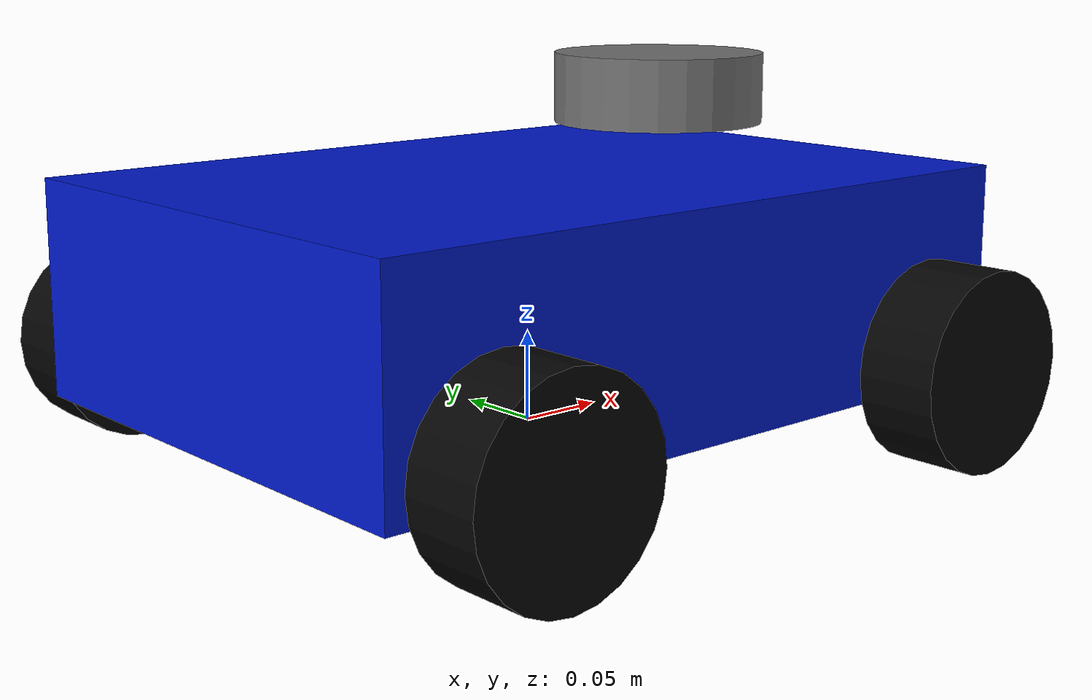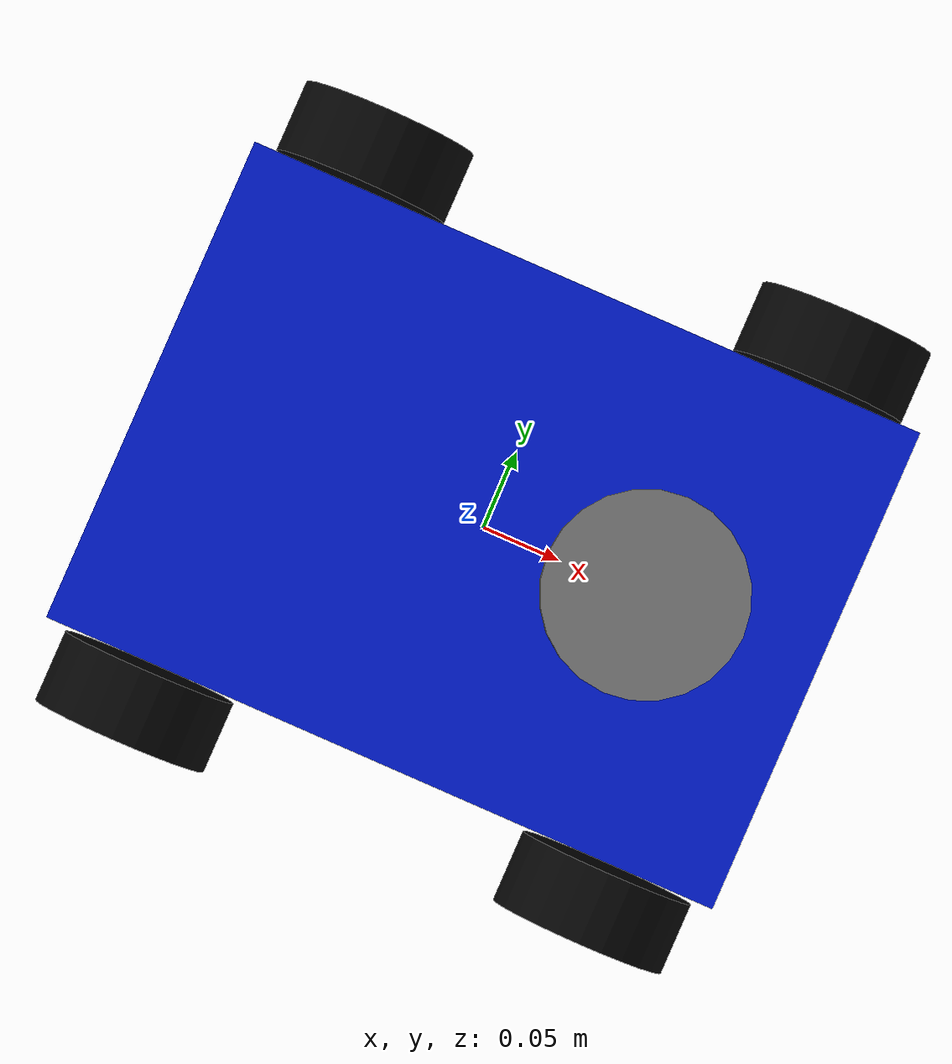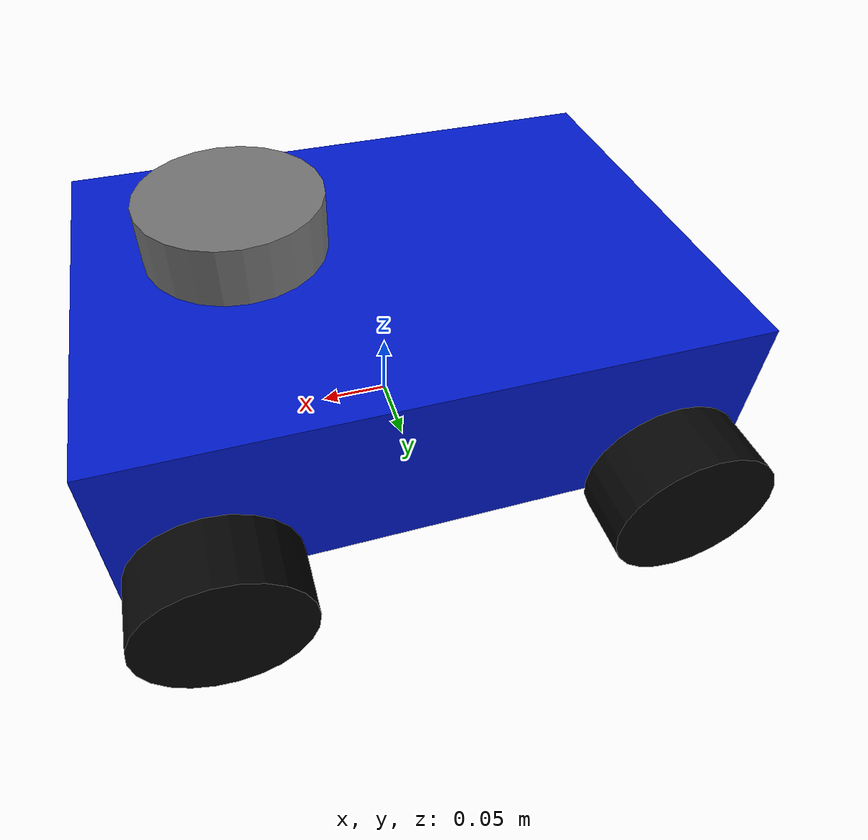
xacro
<?xml version="1.0"?>
<robot xmlns:xacro="http://www.ros.org/wiki/xacro" name="vehicle_sim">
  <material name="blue"><color rgba="0.0 0.1 0.8 1.0"/></material>
  <material name="black"><color rgba="0.02 0.02 0.02 1.0"/></material>
  <material name="gray"><color rgba="0.45 0.45 0.45 1.0"/></material>

  <link name="base_footprint" />

  <joint name="base_footprint_to_base_link" type="fixed">
    <parent link="base_footprint"/>
    <child link="base_link"/>
    <origin xyz="0 0 0.08" rpy="0 0 0"/>
  </joint>

  <link name="base_link">
    <visual>
      <origin xyz="0 0 0" rpy="0 0 0"/>
      <geometry><box size="0.42 0.30 0.12"/></geometry>
      <material name="blue"/>
    </visual>
  </link>

  <xacro:macro name="wheel" params="name x y">
    <link name="${name}">
      <visual>
        <origin xyz="0 0 0" rpy="1.5708 0 0"/>
        <geometry><cylinder radius="0.055" length="0.045"/></geometry>
        <material name="black"/>
      </visual>
    </link>
    <joint name="${name}_joint" type="continuous">
      <parent link="base_link"/>
      <child link="${name}"/>
      <origin xyz="${x} ${y} -0.04" rpy="0 0 0"/>
      <axis xyz="0 1 0"/>
    </joint>
  </xacro:macro>

  <xacro:wheel name="front_left_wheel" x="0.15" y="0.18"/>
  <xacro:wheel name="front_right_wheel" x="0.15" y="-0.18"/>
  <xacro:wheel name="rear_left_wheel" x="-0.15" y="0.18"/>
  <xacro:wheel name="rear_right_wheel" x="-0.15" y="-0.18"/>

  <link name="laser_link">
    <visual>
      <origin xyz="0 0 0" rpy="0 0 0"/>
      <geometry><cylinder radius="0.06" length="0.04"/></geometry>
      <material name="gray"/>
    </visual>
  </link>
  <joint name="base_link_to_laser" type="fixed">
    <parent link="base_link"/>
    <child link="laser_link"/>
    <origin xyz="0.10 0 0.10" rpy="0 0 0"/>
  </joint>
</robot>
